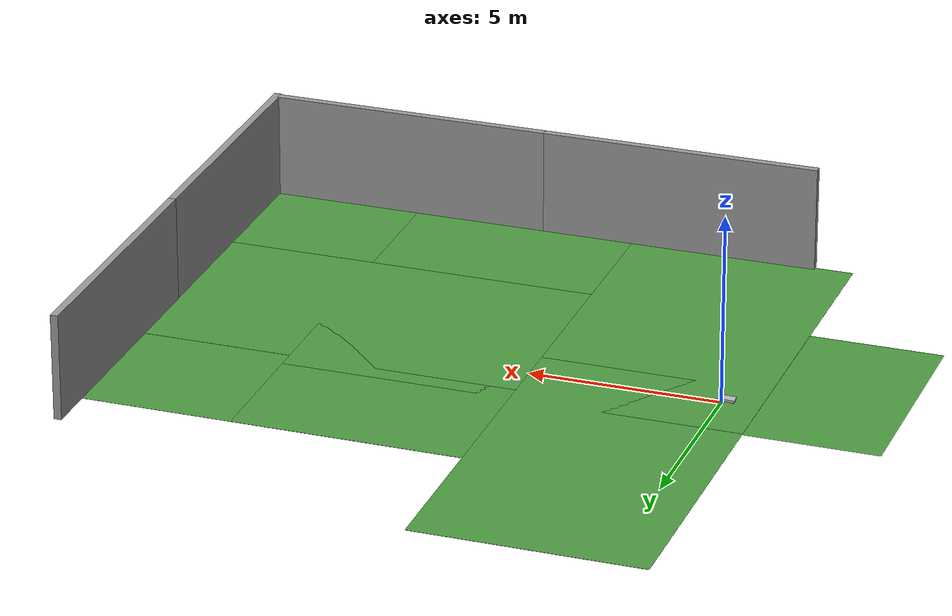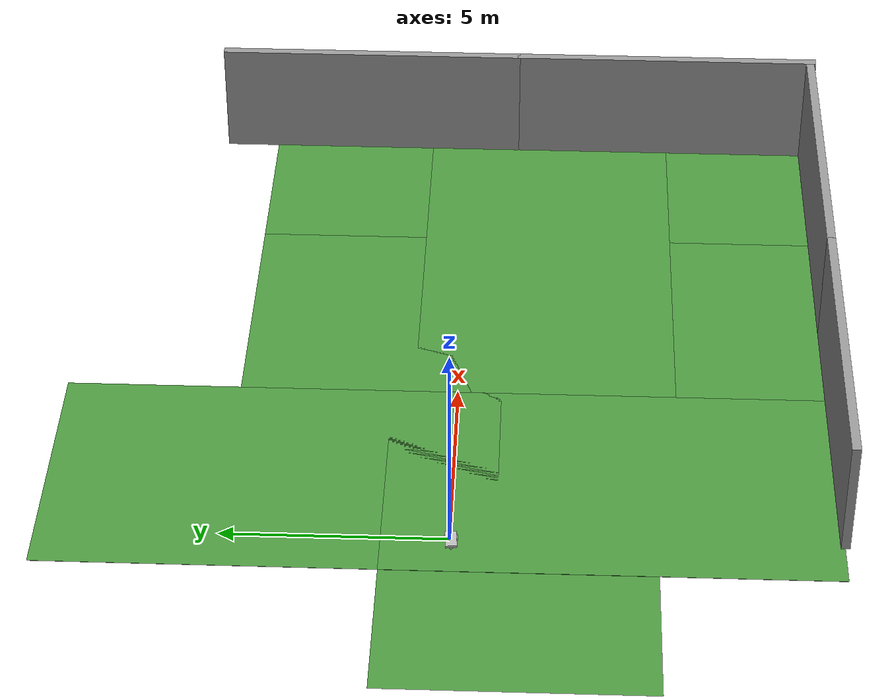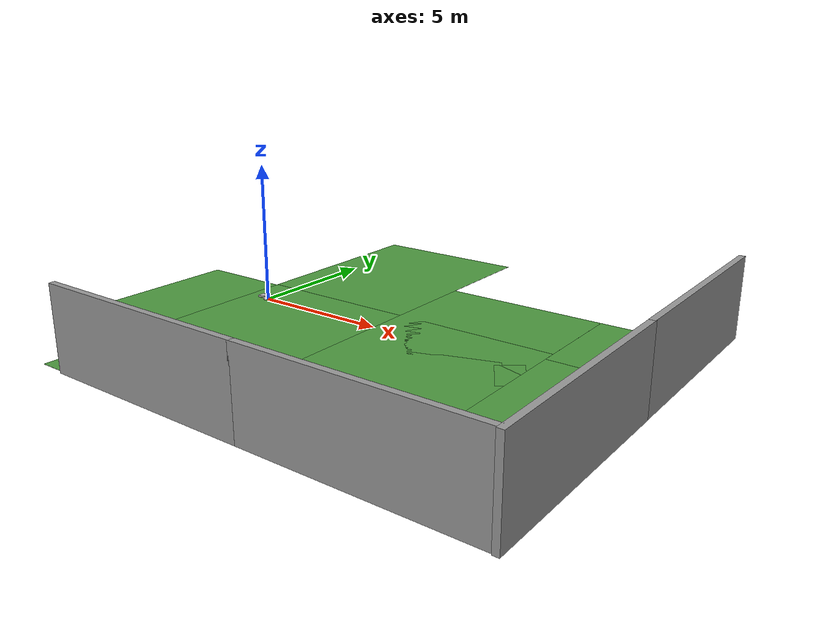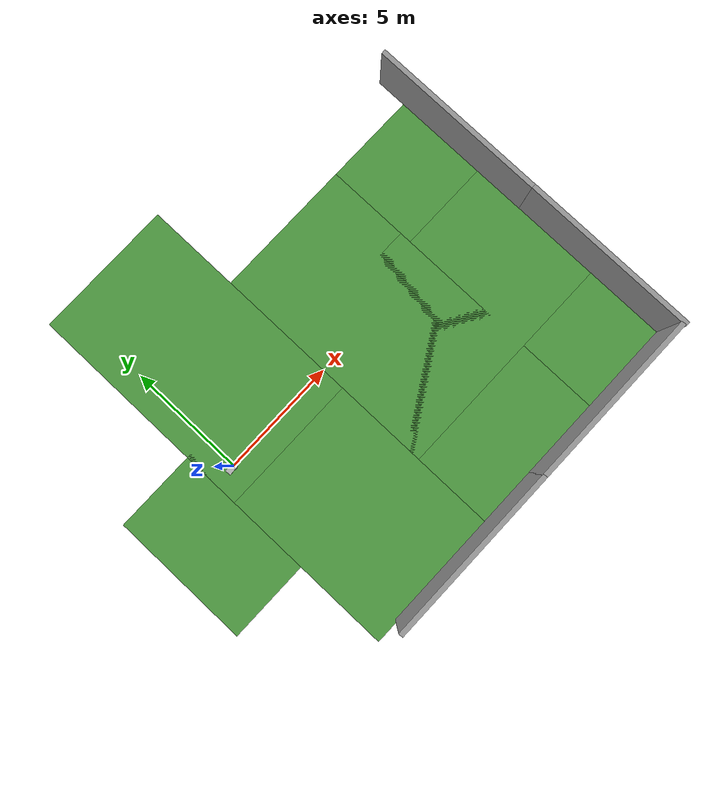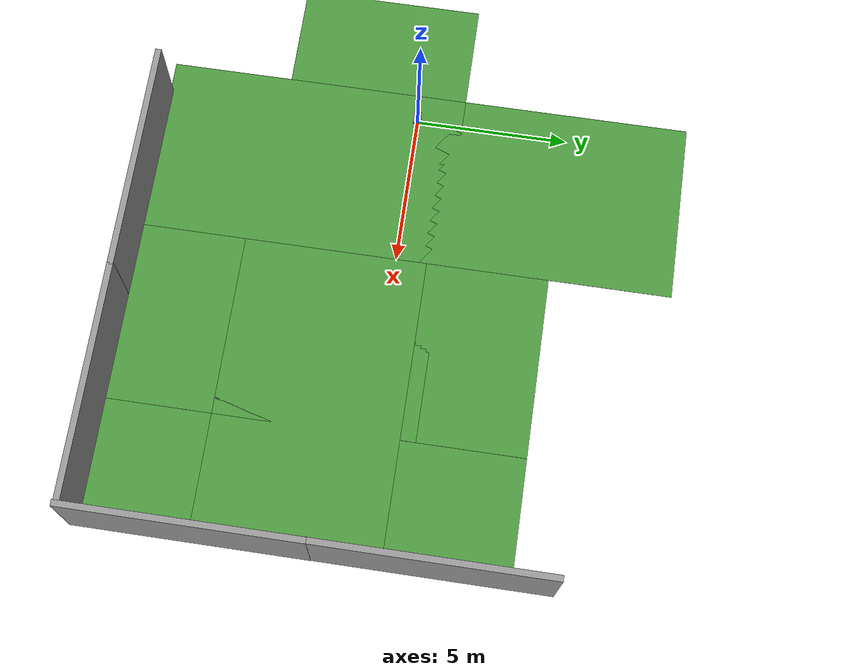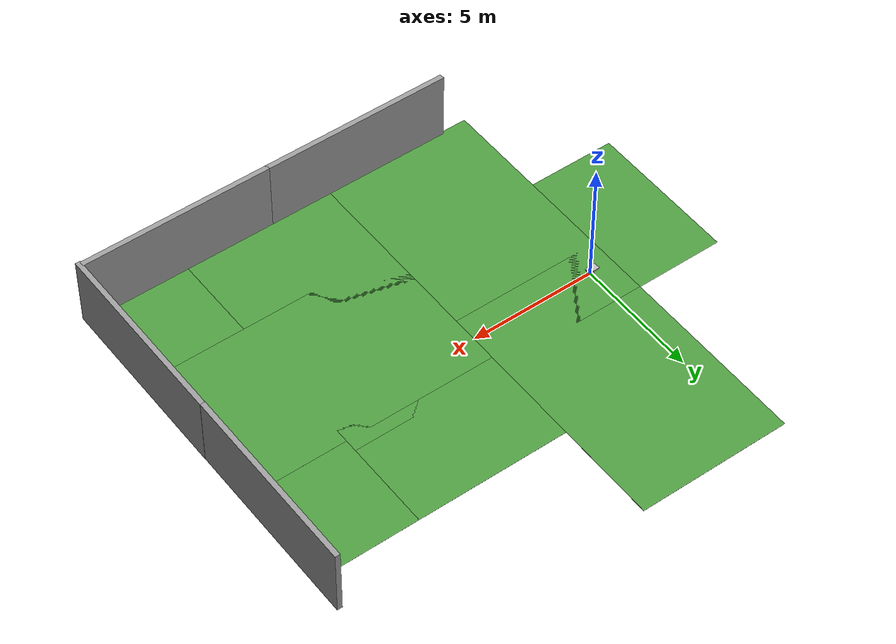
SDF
<sdf version="1.7">
 <world name="default">
  <model name="garden_0">
   <static>1</static>
   <link name="link">
    <collision name="collision">
     <geometry><plane><normal>0 0 1</normal><size>100 100</size></plane></geometry>
     <surface><friction><ode><mu>100</mu><mu2>50</mu2></ode></friction></surface>
    </collision>
    <visual name="visual_0">
     <pose>-2 0 0 0 -0 0</pose>
     <cast_shadows>0</cast_shadows>
     <geometry><plane><normal>0 0 1</normal><size>6 10</size></plane></geometry>
     <material>
      <script>
       <uri>model://garden/materials/scripts</uri>
       <uri>model://garden/materials/textures</uri>
       <name>vrc/grass</name>
      </script>
     </material>
    </visual>
    <visual name="visual_1">
     <pose>3 -2 0 0 -0 0</pose>
     <cast_shadows>0</cast_shadows>
     <geometry><plane><normal>0 0 1</normal><size>4 6</size></plane></geometry>
     <material>
      <script>
       <uri>model://garden/materials/scripts</uri>
       <uri>model://garden/materials/textures</uri>
       <name>vrc/grass</name>
      </script>
     </material>
    </visual>
   </link>
   <pose>0 0.5 0 0 -0 1.5708</pose>
  </model>
  <model name="garden_1">
   <static>1</static>
   <link name="link">
    <collision name="collision">
     <geometry><plane><normal>0 0 1</normal><size>100 100</size></plane></geometry>
     <surface><friction><ode><mu>100</mu><mu2>50</mu2></ode></friction></surface>
    </collision>
    <visual name="visual_0">
     <pose>-2 0 0 0 -0 0</pose>
     <cast_shadows>0</cast_shadows>
     <geometry><plane><normal>0 0 1</normal><size>6 10</size></plane></geometry>
     <material>
      <script>
       <uri>model://garden/materials/scripts</uri>
       <uri>model://garden/materials/textures</uri>
       <name>vrc/grass</name>
      </script>
     </material>
    </visual>
    <visual name="visual_1">
     <pose>3 -2 0 0 -0 0</pose>
     <cast_shadows>0</cast_shadows>
     <geometry><plane><normal>0 0 1</normal><size>4 6</size></plane></geometry>
     <material>
      <script>
       <uri>model://garden/materials/scripts</uri>
       <uri>model://garden/materials/textures</uri>
       <name>vrc/grass</name>
      </script>
     </material>
    </visual>
   </link>
   <pose>10 0 0 0 -0 1.5708</pose>
  </model>
  <model name="garden_2">
   <static>1</static>
   <link name="link">
    <collision name="collision">
     <geometry><plane><normal>0 0 1</normal><size>100 100</size></plane></geometry>
     <surface><friction><ode><mu>100</mu><mu2>50</mu2></ode></friction></surface>
    </collision>
    <visual name="visual_0">
     <pose>-2 0 0 0 -0 0</pose>
     <cast_shadows>0</cast_shadows>
     <geometry><plane><normal>0 0 1</normal><size>6 10</size></plane></geometry>
     <material>
      <script>
       <uri>model://garden/materials/scripts</uri>
       <uri>model://garden/materials/textures</uri>
       <name>vrc/grass</name>
      </script>
     </material>
    </visual>
    <visual name="visual_1">
     <pose>3 -2 0 0 -0 0</pose>
     <cast_shadows>0</cast_shadows>
     <geometry><plane><normal>0 0 1</normal><size>4 6</size></plane></geometry>
     <material>
      <script>
       <uri>model://garden/materials/scripts</uri>
       <uri>model://garden/materials/textures</uri>
       <name>vrc/grass</name>
      </script>
     </material>
    </visual>
   </link>
   <pose>10 0 0 0 -0 0</pose>
  </model>
  <model name="garden_3">
   <static>1</static>
   <link name="link">
    <collision name="collision">
     <geometry><plane><normal>0 0 1</normal><size>100 100</size></plane></geometry>
     <surface><friction><ode><mu>100</mu><mu2>50</mu2></ode></friction></surface>
    </collision>
    <visual name="visual_0">
     <pose>-2 0 0 0 -0 0</pose>
     <cast_shadows>0</cast_shadows>
     <geometry><plane><normal>0 0 1</normal><size>6 10</size></plane></geometry>
     <material>
      <script>
       <uri>model://garden/materials/scripts</uri>
       <uri>model://garden/materials/textures</uri>
       <name>vrc/grass</name>
      </script>
     </material>
    </visual>
    <visual name="visual_1">
     <pose>3 -2 0 0 -0 0</pose>
     <cast_shadows>0</cast_shadows>
     <geometry><plane><normal>0 0 1</normal><size>4 6</size></plane></geometry>
     <material>
      <script>
       <uri>model://garden/materials/scripts</uri>
       <uri>model://garden/materials/textures</uri>
       <name>vrc/grass</name>
      </script>
     </material>
    </visual>
   </link>
   <pose>4 4 0 0 -0 0</pose>
  </model>
  <model name="garden_18">
   <static>1</static>
   <link name="link">
    <collision name="collision">
     <geometry><plane><normal>0 0 1</normal><size>100 100</size></plane></geometry>
     <surface><friction><ode><mu>100</mu><mu2>50</mu2></ode></friction></surface>
    </collision>
    <visual name="visual_0">
     <pose>-2 0 0 0 -0 0</pose>
     <cast_shadows>0</cast_shadows>
     <geometry><plane><normal>0 0 1</normal><size>6 10</size></plane></geometry>
     <material>
      <script>
       <uri>model://garden/materials/scripts</uri>
       <uri>model://garden/materials/textures</uri>
       <name>vrc/grass</name>
      </script>
     </material>
    </visual>
    <visual name="visual_1">
     <pose>3 -2 0 0 -0 0</pose>
     <cast_shadows>0</cast_shadows>
     <geometry><plane><normal>0 0 1</normal><size>4 6</size></plane></geometry>
     <material>
      <script>
       <uri>model://garden/materials/scripts</uri>
       <uri>model://garden/materials/textures</uri>
       <name>vrc/grass</name>
      </script>
     </material>
    </visual>
   </link>
   <pose>4 -3.5 0 0 -0 0</pose>
  </model>
  <model name="garden_19">
   <static>1</static>
   <link name="link">
    <collision name="collision">
     <geometry><plane><normal>0 0 1</normal><size>100 100</size></plane></geometry>
     <surface><friction><ode><mu>100</mu><mu2>50</mu2></ode></friction></surface>
    </collision>
    <visual name="visual_0">
     <pose>-2 0 0 0 -0 0</pose>
     <cast_shadows>0</cast_shadows>
     <geometry><plane><normal>0 0 1</normal><size>6 10</size></plane></geometry>
     <material>
      <script>
       <uri>model://garden/materials/scripts</uri>
       <uri>model://garden/materials/textures</uri>
       <name>vrc/grass</name>
      </script>
     </material>
    </visual>
    <visual name="visual_1">
     <pose>3 -2 0 0 -0 0</pose>
     <cast_shadows>0</cast_shadows>
     <geometry><plane><normal>0 0 1</normal><size>4 6</size></plane></geometry>
     <material>
      <script>
       <uri>model://garden/materials/scripts</uri>
       <uri>model://garden/materials/textures</uri>
       <name>vrc/grass</name>
      </script>
     </material>
    </visual>
   </link>
   <pose>10 -3.5 0 0 -0 0</pose>
  </model>
  <model name="grey_wall_1">
   <static>1</static>
   <link name="link">
    <pose>0 0 1.4 0 -0 0</pose>
    <collision name="collision"><geometry><box><size>7.5 0.2 2.8</size></box></geometry></collision>
    <visual name="visual">
     <cast_shadows>0</cast_shadows>
     <geometry><box><size>7.5 0.2 2.8</size></box></geometry>
     <material>
      <script>
       <uri>model://grey_wall/materials/scripts</uri>
       <uri>model://grey_wall/materials/textures</uri>
       <name>vrc/grey_wall</name>
      </script>
     </material>
    </visual>
   </link>
   <pose>15.0243 2.54421 0 0 -0 1.57</pose>
  </model>
  <model name="grey_wall_2">
   <static>1</static>
   <link name="link">
    <pose>0 0 1.4 0 -0 0</pose>
    <collision name="collision"><geometry><box><size>7.5 0.2 2.8</size></box></geometry></collision>
    <visual name="visual">
     <cast_shadows>0</cast_shadows>
     <geometry><box><size>7.5 0.2 2.8</size></box></geometry>
     <material>
      <script>
       <uri>model://grey_wall/materials/scripts</uri>
       <uri>model://grey_wall/materials/textures</uri>
       <name>vrc/grey_wall</name>
      </script>
     </material>
    </visual>
   </link>
   <pose>15.0243 -4.89 0 0 -0 1.57</pose>
  </model>
  <model name="grey_wall_3">
   <static>1</static>
   <link name="link">
    <pose>0 0 1.4 0 -0 0</pose>
    <collision name="collision"><geometry><box><size>7.5 0.2 2.8</size></box></geometry></collision>
    <visual name="visual">
     <cast_shadows>0</cast_shadows>
     <geometry><box><size>7.5 0.2 2.8</size></box></geometry>
     <material>
      <script>
       <uri>model://grey_wall/materials/scripts</uri>
       <uri>model://grey_wall/materials/textures</uri>
       <name>vrc/grey_wall</name>
      </script>
     </material>
    </visual>
   </link>
   <pose>11.2137 -8.5 0 0 -0 0</pose>
  </model>
  <model name="grey_wall_4">
   <static>1</static>
   <link name="link">
    <pose>0 0 1.4 0 -0 0</pose>
    <collision name="collision"><geometry><box><size>7.5 0.2 2.8</size></box></geometry></collision>
    <visual name="visual">
     <cast_shadows>0</cast_shadows>
     <geometry><box><size>7.5 0.2 2.8</size></box></geometry>
     <material>
      <script>
       <uri>model://grey_wall/materials/scripts</uri>
       <uri>model://grey_wall/materials/textures</uri>
       <name>vrc/grey_wall</name>
      </script>
     </material>
    </visual>
   </link>
   <pose>3.7659 -8.5 0 0 -0 0</pose>
  </model>
  <model name="dandy_robot">
   <static>0</static>
   <pose>-0.128839 -0.034358 0.11808 4e-06 -0.06449 0.072082</pose>
   <link name="base_footprint">
    <inertial>
     <inertia><ixx>1</ixx><ixy>0</ixy><ixz>0</ixz><iyy>1</iyy><iyz>0</iyz><izz>1</izz></inertia>
     <mass>1</mass>
    </inertial>
   </link>
   <link name="base_link">
    <collision name="base_collision">
     <geometry><box><size>0.4385 0.25 0.06</size></box></geometry>
     <mass>40.0</mass>
    </collision>
    <visual name="base_visual"><geometry><box><size>0.4385 0.25 0.06</size></box></geometry></visual>
    <inertial>
     <inertia><ixx>1</ixx><ixy>0</ixy><ixz>0</ixz><iyy>1</iyy><iyz>0</iyz><izz>1</izz></inertia>
     <mass>1</mass>
    </inertial>
   </link>
   <link name="imu_link">
    <pose>-0.07225 0.083 0.05 0 -0 0</pose>
    <sensor name="bmb_imu" type="imu">
     <always_on>1</always_on>
     <update_rate>100</update_rate>
     <visualize>1</visualize>
     <imu>
      <angular_velocity>
       <x><noise type="gaussian"><mean>0</mean><stddev>0.0002</stddev></noise></x>
       <y><noise type="gaussian"><mean>0</mean><stddev>0.0002</stddev></noise></y>
       <z><noise type="gaussian"><mean>0</mean><stddev>0.0002</stddev></noise></z>
      </angular_velocity>
      <linear_acceleration>
       <x><noise type="gaussian"><mean>0</mean><stddev>0.017</stddev></noise></x>
       <y><noise type="gaussian"><mean>0</mean><stddev>0.017</stddev></noise></y>
       <z><noise type="gaussian"><mean>0</mean><stddev>0.017</stddev></noise></z>
      </linear_acceleration>
      <orientation>
       <x><noise type="gaussian"><mean>0.0</mean><stddev>2e-3</stddev></noise></x>
       <y><noise type="gaussian"><mean>0.0</mean><stddev>2e-3</stddev></noise></y>
       <z><noise type="gaussian"><mean>0.0</mean><stddev>2e-3</stddev></noise></z>
      </orientation>
     </imu>
     <plugin name="dandy_robot_imu" filename="libgazebo_ros_imu_sensor.so">
      <initial_orientation_as_reference>0</initial_orientation_as_reference>
      <frame_name>imu_link</frame_name>
      <ros><namespace>/imu</namespace><remapping>~/out:=data</remapping></ros>
     </plugin>
    </sensor>
    <inertial>
     <inertia><ixx>1</ixx><ixy>0</ixy><ixz>0</ixz><iyy>1</iyy><iyz>0</iyz><izz>1</izz></inertia>
     <mass>1</mass>
    </inertial>
   </link>
   <link name="gps_link">
    <pose>0.02275 -0.067 0.05 0 -0 0</pose>
    <sensor name="bmb_gps" type="gps">
     <always_on>1</always_on>
     <update_rate>10</update_rate>
     <gps>
      <position_sensing>
       <horizontal><noise type="gaussian"><mean>0</mean><stddev>0.01</stddev></noise></horizontal>
       <vertical><noise type="gaussian"><mean>0</mean><stddev>1</stddev></noise></vertical>
      </position_sensing>
     </gps>
     <plugin name="dandy_robot_gps" filename="libgazebo_ros_gps_sensor.so">
      <ros><remapping>~/out:=gps/fix</remapping></ros>
     </plugin>
    </sensor>
    <inertial>
     <inertia><ixx>1</ixx><ixy>0</ixy><ixz>0</ixz><iyy>1</iyy><iyz>0</iyz><izz>1</izz></inertia>
     <mass>1</mass>
    </inertial>
   </link>
   <link name="drivewhl_l_link">
    <pose>0.10575 0.1255 -0.05 3.14159 1.57079 -1.57079</pose>
    <collision name="drivewhl_l_collision">
     <geometry><cylinder><radius>0.075</radius><length>0.04</length></cylinder></geometry>
    </collision>
    <visual name="drivewhl_l_visual">
     <geometry><cylinder><radius>0.075</radius><length>0.04</length></cylinder></geometry>
    </visual>
    <inertial>
     <inertia><ixx>1</ixx><ixy>0</ixy><ixz>0</ixz><iyy>1</iyy><iyz>0</iyz><izz>1</izz></inertia>
     <mass>1</mass>
    </inertial>
    <mass>10.0</mass>
   </link>
   <link name="drivewhl_r_link">
    <pose>0.10575 -0.1255 -0.05 3.14159 1.57079 -1.57079</pose>
    <collision name="drivewhl_r_collision">
     <geometry><cylinder><radius>0.075</radius><length>0.04</length></cylinder></geometry>
    </collision>
    <visual name="drivewhl_r_visual">
     <geometry><cylinder><radius>0.075</radius><length>0.04</length></cylinder></geometry>
    </visual>
    <inertial>
     <inertia><ixx>1</ixx><ixy>0</ixy><ixz>0</ixz><iyy>1</iyy><iyz>0</iyz><izz>1</izz></inertia>
     <mass>1</mass>
    </inertial>
    <mass>10.0</mass>
   </link>
   <link name="back_caster">
    <pose>-0.17425 0 -0.067 0 -0 0</pose>
    <inertial>
     <inertia><ixx>0.001</ixx><ixy>0</ixy><ixz>0</ixz><iyy>0.001</iyy><iyz>0</iyz><izz>0.001</izz></inertia>
     <mass>10.05</mass>
    </inertial>
    <collision name="collision">
     <geometry><sphere><radius>0.04</radius></sphere></geometry>
     <surface>
      <friction><ode><mu>0.01</mu><mu2>0.01</mu2><slip1>1</slip1><slip2>1</slip2></ode></friction>
     </surface>
    </collision>
    <visual name="back_caster_visual"><geometry><sphere><radius>0.04</radius></sphere></geometry></visual>
   </link>
   <joint name="base_joint" type="fixed"><parent>base_footprint</parent><child>base_link</child></joint>
   <joint name="drivewhl_l_joint" type="revolute">
    <parent>base_link</parent>
    <child>drivewhl_l_link</child>
    <axis>
     <xyz>0 0 1</xyz>
     <limit><lower>-1e+16</lower><upper>1e+16</upper></limit>
     <dynamics><spring_reference>0</spring_reference><spring_stiffness>0</spring_stiffness></dynamics>
    </axis>
   </joint>
   <joint name="drivewhl_r_joint" type="revolute">
    <parent>base_link</parent>
    <child>drivewhl_r_link</child>
    <axis>
     <xyz>0 0 1</xyz>
     <limit><lower>-1e+16</lower><upper>1e+16</upper></limit>
     <dynamics><spring_reference>0</spring_reference><spring_stiffness>0</spring_stiffness></dynamics>
    </axis>
   </joint>
   <joint name="caster_joint" type="fixed"><parent>base_link</parent><child>back_caster</child></joint>
   <joint name="imu_joint" type="fixed"><parent>base_link</parent><child>imu_link</child></joint>
   <joint name="gps_joint" type="fixed"><parent>base_link</parent><child>gps_link</child></joint>
   <joint name="lidar_joint" type="fixed"><parent>base_link</parent><child>lidar_link</child></joint>
   <plugin name="dandy_robot_bot_diff_drive" filename="libgazebo_ros_diff_drive.so">
    <update_rate>30</update_rate>
    <left_joint>drivewhl_l_joint</left_joint>
    <right_joint>drivewhl_r_joint</right_joint>
    <wheel_separation>0.2115</wheel_separation>
    <wheel_diameter>0.15</wheel_diameter>
    <max_wheel_torque>20</max_wheel_torque>
    <max_wheel_acceleration>0.25</max_wheel_acceleration>
    <command_topic>cmd_vel</command_topic>
    <publish_odom>1</publish_odom>
    <publish_odom_tf>0</publish_odom_tf>
    <publish_wheel_tf>0</publish_wheel_tf>
    <odometry_topic>odom</odometry_topic>
    <odometry_frame>odom</odometry_frame>
    <robot_base_frame>base_footprint</robot_base_frame>
    <odometry_source>1</odometry_source>
    <ros><remapping>odom:=odom</remapping><remapping>cmd_vel:=twist</remapping></ros>
   </plugin>
   <plugin name="dandy_robot_bot_joint_state" filename="libgazebo_ros_joint_state_publisher.so">
    <ros><remapping>~/out:=joint_states</remapping></ros>
    <update_rate>30</update_rate>
    <joint_name>drivewhl_l_joint</joint_name>
    <joint_name>drivewhl_r_joint</joint_name>
   </plugin>
  </model>
 </world>
</sdf>
